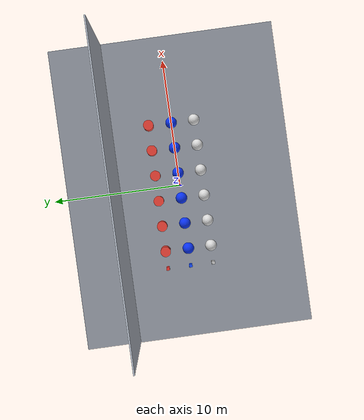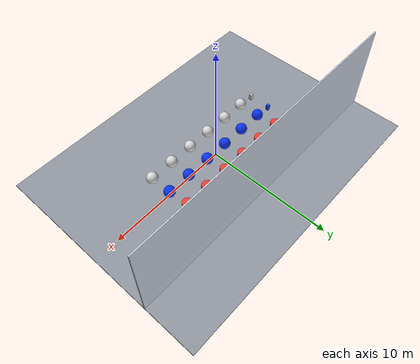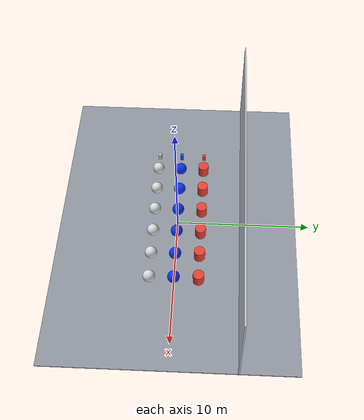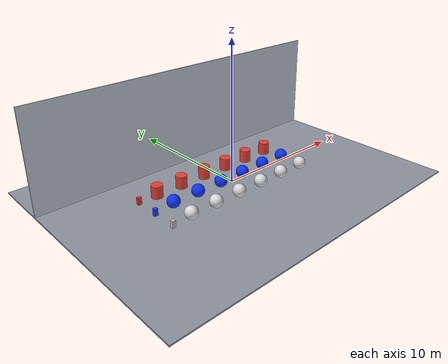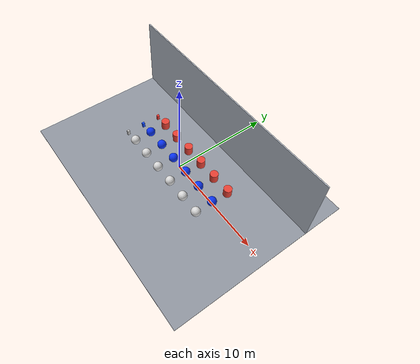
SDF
<?xml version="1.0" ?>
<sdf version="1.9">
  <world name="pbr_material_test_world">
    <gravity>0 0 -9.8</gravity>

    <scene>
      <ambient>0.28 0.28 0.28 1</ambient>
      <background>0.80 0.88 0.96 1</background>
    </scene>

    <gui fullscreen="0">
      <camera name="pbr_test_camera">
        <pose>-3.71800184249878 -12.6254091262817 10.2779178619385 1.49236509263447E-08 0.450299817065732 1.38231500457794</pose>
        <view_controller>orbit</view_controller>
        <projection_type>perspective</projection_type>
      </camera>
    </gui>

    <!-- Key / fill / rim + small highlight light -->
    <light name="key_light" type="directional">
      <cast_shadows>true</cast_shadows>
      <pose>0 -8 10 0 0 0</pose>
      <diffuse>1.0 1.0 1.0 1</diffuse>
      <specular>1.0 1.0 1.0 1</specular>
      <direction>-0.20 0.60 -0.77</direction>
    </light>

    <light name="fill_light" type="directional">
      <cast_shadows>false</cast_shadows>
      <pose>0 9 8 0 0 0</pose>
      <diffuse>0.34 0.36 0.40 1</diffuse>
      <specular>0.18 0.20 0.22 1</specular>
      <direction>0.10 -0.82 -0.56</direction>
    </light>

    <light name="rim_light" type="spot">
      <cast_shadows>false</cast_shadows>
      <pose>0 5 6 0 0 0</pose>
      <diffuse>0.80 0.82 0.88 1</diffuse>
      <specular>0.65 0.68 0.74 1</specular>
      <attenuation>
        <range>30</range>
        <constant>0.8</constant>
        <linear>0.02</linear>
        <quadratic>0.001</quadratic>
      </attenuation>
      <direction>0 -0.92 -0.38</direction>
      <spot>
        <inner_angle>0.32</inner_angle>
        <outer_angle>0.62</outer_angle>
        <falloff>0.8</falloff>
      </spot>
    </light>

    <light name="highlight_light" type="point">
      <cast_shadows>false</cast_shadows>
      <pose>0 -2.8 2.6 0 0 0</pose>
      <diffuse>1.0 1.0 1.0 1</diffuse>
      <specular>1.0 1.0 1.0 1</specular>
      <attenuation>
        <range>16</range>
        <constant>0.55</constant>
        <linear>0.03</linear>
        <quadratic>0.0015</quadratic>
      </attenuation>
    </light>

    <model name="ground">
      <static>true</static>
      <pose>0 0 -0.05 0 0 0</pose>
      <link name="link">
        <collision name="collision">
          <geometry>
            <box>
              <size>24 18 0.1</size>
            </box>
          </geometry>
        </collision>
        <visual name="visual">
          <geometry>
            <box>
              <size>24 18 0.1</size>
            </box>
          </geometry>
          <material>
            <diffuse>0.56 0.58 0.62 1</diffuse>
            <specular>0.04 0.04 0.04 1</specular>
            <pbr>
              <metal>
                <metalness>0.0</metalness>
                <roughness>0.90</roughness>
              </metal>
            </pbr>
          </material>
        </visual>
      </link>
    </model>

    <model name="back_wall">
      <static>true</static>
      <pose>0 4.8 3.6 0 0 0</pose>
      <link name="link">
        <visual name="visual">
          <geometry>
            <box>
              <size>24 0.1 7.2</size>
            </box>
          </geometry>
          <material>
            <diffuse>0.76 0.79 0.84 1</diffuse>
            <specular>0.08 0.08 0.08 1</specular>
            <pbr>
              <metal>
                <metalness>0.0</metalness>
                <roughness>0.72</roughness>
              </metal>
            </pbr>
          </material>
        </visual>
      </link>
    </model>

    <!-- row markers (visual labels) -->
    <model name="row_marker_metal">
      <static>true</static>
      <pose>-6.4 -1.8 0.25 0 0 0</pose>
      <link name="link">
        <visual name="visual">
          <geometry>
            <box>
              <size>0.25 0.25 0.5</size>
            </box>
          </geometry>
          <material>
            <diffuse>0.75 0.75 0.75 1</diffuse>
            <emissive>0.04 0.04 0.04 1</emissive>
            <pbr>
              <metal>
                <metalness>0.0</metalness>
                <roughness>0.60</roughness>
              </metal>
            </pbr>
          </material>
        </visual>
      </link>
    </model>

    <model name="row_marker_dielectric">
      <static>true</static>
      <pose>-6.4 0 0.25 0 0 0</pose>
      <link name="link">
        <visual name="visual">
          <geometry>
            <box>
              <size>0.25 0.25 0.5</size>
            </box>
          </geometry>
          <material>
            <diffuse>0.07 0.28 0.95 1</diffuse>
            <emissive>0.01 0.03 0.08 1</emissive>
            <pbr>
              <metal>
                <metalness>0.0</metalness>
                <roughness>0.35</roughness>
              </metal>
            </pbr>
          </material>
        </visual>
      </link>
    </model>

    <model name="row_marker_specular">
      <static>true</static>
      <pose>-6.4 1.8 0.25 0 0 0</pose>
      <link name="link">
        <visual name="visual">
          <geometry>
            <box>
              <size>0.25 0.25 0.5</size>
            </box>
          </geometry>
          <material>
            <diffuse>0.90 0.20 0.18 1</diffuse>
            <emissive>0.07 0.01 0.01 1</emissive>
            <pbr>
              <metal>
                <metalness>0.0</metalness>
                <roughness>0.35</roughness>
              </metal>
            </pbr>
          </material>
        </visual>
      </link>
    </model>

    <!-- Metal workflow row: roughness 0.05 -> 0.90 -->
    <model name="metal_r005">
      <static>true</static>
      <pose>-5 -1.8 0.45 0 0 0</pose>
      <link name="link"><visual name="v"><geometry><sphere><radius>0.45</radius></sphere></geometry><material><diffuse>0.86 0.86 0.86 1</diffuse><pbr><metal><metalness>1.0</metalness><roughness>0.05</roughness></metal></pbr></material></visual></link>
    </model>
    <model name="metal_r020">
      <static>true</static>
      <pose>-3 -1.8 0.45 0 0 0</pose>
      <link name="link"><visual name="v"><geometry><sphere><radius>0.45</radius></sphere></geometry><material><diffuse>0.86 0.86 0.86 1</diffuse><pbr><metal><metalness>1.0</metalness><roughness>0.20</roughness></metal></pbr></material></visual></link>
    </model>
    <model name="metal_r035">
      <static>true</static>
      <pose>-1 -1.8 0.45 0 0 0</pose>
      <link name="link"><visual name="v"><geometry><sphere><radius>0.45</radius></sphere></geometry><material><diffuse>0.86 0.86 0.86 1</diffuse><pbr><metal><metalness>1.0</metalness><roughness>0.35</roughness></metal></pbr></material></visual></link>
    </model>
    <model name="metal_r050">
      <static>true</static>
      <pose>1 -1.8 0.45 0 0 0</pose>
      <link name="link"><visual name="v"><geometry><sphere><radius>0.45</radius></sphere></geometry><material><diffuse>0.86 0.86 0.86 1</diffuse><pbr><metal><metalness>1.0</metalness><roughness>0.50</roughness></metal></pbr></material></visual></link>
    </model>
    <model name="metal_r070">
      <static>true</static>
      <pose>3 -1.8 0.45 0 0 0</pose>
      <link name="link"><visual name="v"><geometry><sphere><radius>0.45</radius></sphere></geometry><material><diffuse>0.86 0.86 0.86 1</diffuse><pbr><metal><metalness>1.0</metalness><roughness>0.70</roughness></metal></pbr></material></visual></link>
    </model>
    <model name="metal_r090">
      <static>true</static>
      <pose>5 -1.8 0.45 0 0 0</pose>
      <link name="link"><visual name="v"><geometry><sphere><radius>0.45</radius></sphere></geometry><material><diffuse>0.86 0.86 0.86 1</diffuse><pbr><metal><metalness>1.0</metalness><roughness>0.90</roughness></metal></pbr></material></visual></link>
    </model>

    <!-- Dielectric row: same roughness ramp for direct comparison -->
    <model name="dielectric_r005">
      <static>true</static>
      <pose>-5 0 0.45 0 0 0</pose>
      <link name="link"><visual name="v"><geometry><sphere><radius>0.45</radius></sphere></geometry><material><diffuse>0.04 0.20 0.95 1</diffuse><pbr><metal><metalness>0.0</metalness><roughness>0.05</roughness></metal></pbr></material></visual></link>
    </model>
    <model name="dielectric_r020">
      <static>true</static>
      <pose>-3 0 0.45 0 0 0</pose>
      <link name="link"><visual name="v"><geometry><sphere><radius>0.45</radius></sphere></geometry><material><diffuse>0.04 0.20 0.95 1</diffuse><pbr><metal><metalness>0.0</metalness><roughness>0.20</roughness></metal></pbr></material></visual></link>
    </model>
    <model name="dielectric_r035">
      <static>true</static>
      <pose>-1 0 0.45 0 0 0</pose>
      <link name="link"><visual name="v"><geometry><sphere><radius>0.45</radius></sphere></geometry><material><diffuse>0.04 0.20 0.95 1</diffuse><pbr><metal><metalness>0.0</metalness><roughness>0.35</roughness></metal></pbr></material></visual></link>
    </model>
    <model name="dielectric_r050">
      <static>true</static>
      <pose>1 0 0.45 0 0 0</pose>
      <link name="link"><visual name="v"><geometry><sphere><radius>0.45</radius></sphere></geometry><material><diffuse>0.04 0.20 0.95 1</diffuse><pbr><metal><metalness>0.0</metalness><roughness>0.50</roughness></metal></pbr></material></visual></link>
    </model>
    <model name="dielectric_r070">
      <static>true</static>
      <pose>3 0 0.45 0 0 0</pose>
      <link name="link"><visual name="v"><geometry><sphere><radius>0.45</radius></sphere></geometry><material><diffuse>0.04 0.20 0.95 1</diffuse><pbr><metal><metalness>0.0</metalness><roughness>0.70</roughness></metal></pbr></material></visual></link>
    </model>
    <model name="dielectric_r090">
      <static>true</static>
      <pose>5 0 0.45 0 0 0</pose>
      <link name="link"><visual name="v"><geometry><sphere><radius>0.45</radius></sphere></geometry><material><diffuse>0.04 0.20 0.95 1</diffuse><pbr><metal><metalness>0.0</metalness><roughness>0.90</roughness></metal></pbr></material></visual></link>
    </model>

    <!-- Specular workflow row: glossiness 0.95 -> 0.05 -->
    <model name="specular_g095">
      <static>true</static>
      <pose>-5 1.8 0.45 0 0 0</pose>
      <link name="link"><visual name="v"><geometry><cylinder><radius>0.40</radius><length>0.90</length></cylinder></geometry><material><diffuse>0.90 0.25 0.20 1</diffuse><specular>0.90 0.90 0.90 1</specular><pbr><specular><glossiness>0.95</glossiness></specular></pbr></material></visual></link>
    </model>
    <model name="specular_g075">
      <static>true</static>
      <pose>-3 1.8 0.45 0 0 0</pose>
      <link name="link"><visual name="v"><geometry><cylinder><radius>0.40</radius><length>0.90</length></cylinder></geometry><material><diffuse>0.90 0.25 0.20 1</diffuse><specular>0.90 0.90 0.90 1</specular><pbr><specular><glossiness>0.75</glossiness></specular></pbr></material></visual></link>
    </model>
    <model name="specular_g055">
      <static>true</static>
      <pose>-1 1.8 0.45 0 0 0</pose>
      <link name="link"><visual name="v"><geometry><cylinder><radius>0.40</radius><length>0.90</length></cylinder></geometry><material><diffuse>0.90 0.25 0.20 1</diffuse><specular>0.90 0.90 0.90 1</specular><pbr><specular><glossiness>0.55</glossiness></specular></pbr></material></visual></link>
    </model>
    <model name="specular_g035">
      <static>true</static>
      <pose>1 1.8 0.45 0 0 0</pose>
      <link name="link"><visual name="v"><geometry><cylinder><radius>0.40</radius><length>0.90</length></cylinder></geometry><material><diffuse>0.90 0.25 0.20 1</diffuse><specular>0.90 0.90 0.90 1</specular><pbr><specular><glossiness>0.35</glossiness></specular></pbr></material></visual></link>
    </model>
    <model name="specular_g020">
      <static>true</static>
      <pose>3 1.8 0.45 0 0 0</pose>
      <link name="link"><visual name="v"><geometry><cylinder><radius>0.40</radius><length>0.90</length></cylinder></geometry><material><diffuse>0.90 0.25 0.20 1</diffuse><specular>0.90 0.90 0.90 1</specular><pbr><specular><glossiness>0.20</glossiness></specular></pbr></material></visual></link>
    </model>
    <model name="specular_g005">
      <static>true</static>
      <pose>5 1.8 0.45 0 0 0</pose>
      <link name="link"><visual name="v"><geometry><cylinder><radius>0.40</radius><length>0.90</length></cylinder></geometry><material><diffuse>0.90 0.25 0.20 1</diffuse><specular>0.90 0.90 0.90 1</specular><pbr><specular><glossiness>0.05</glossiness></specular></pbr></material></visual></link>
    </model>

  </world>
</sdf>
